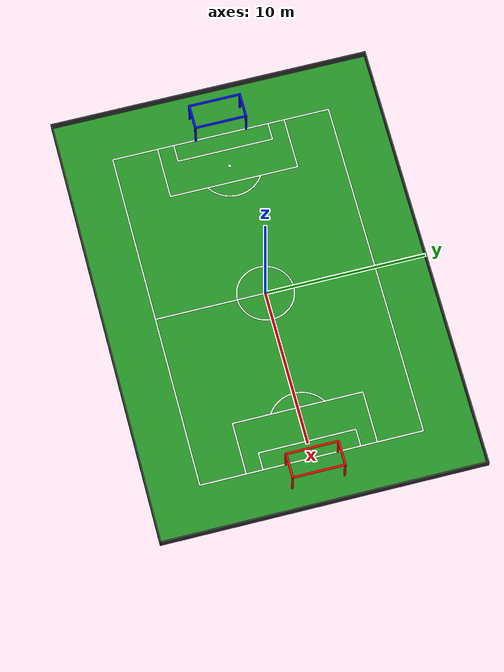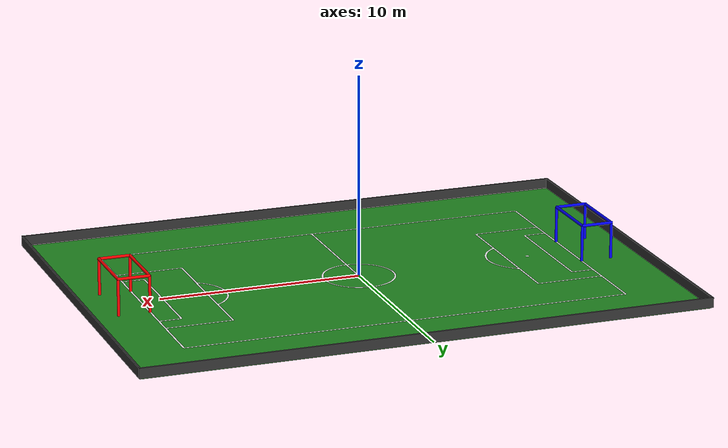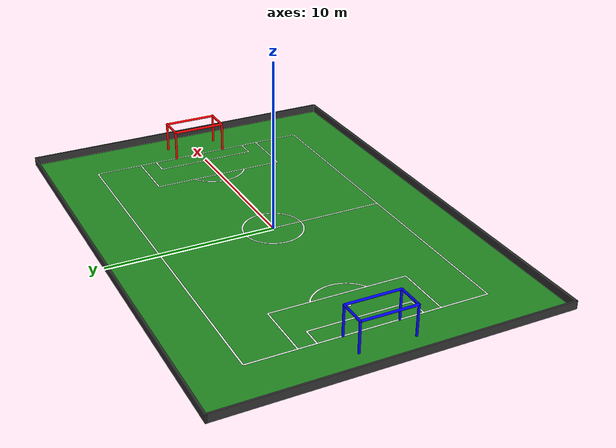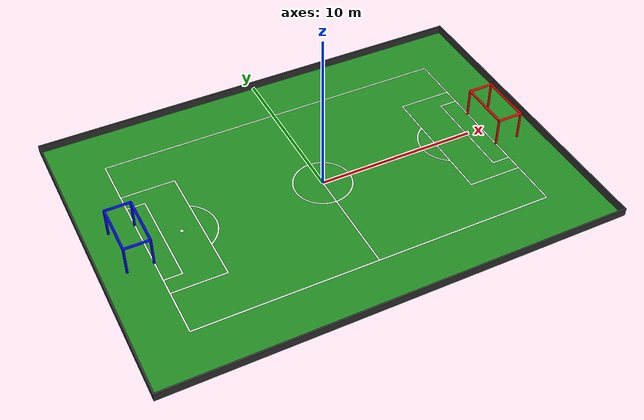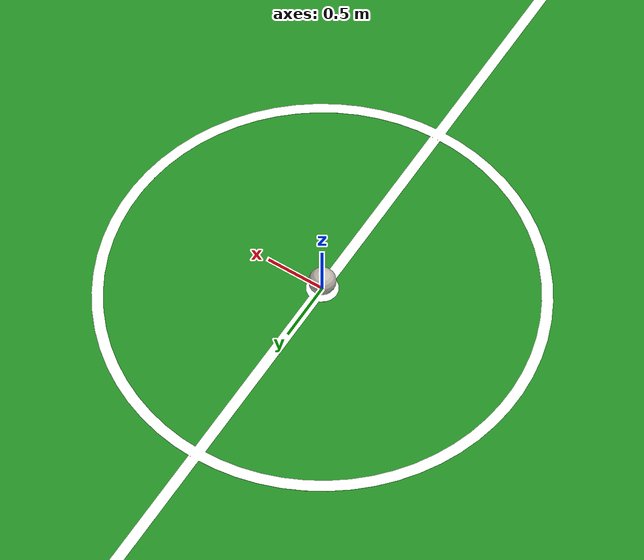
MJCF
<mujoco model="football">

    <asset>
        <!-- Overhead field texture and logo -->
        <mesh name="soccer_field" file="meshes/pitch_l.obj"/>
        <mesh name="goal_north" file="meshes/goal_north.obj"/>
        <mesh name="defender" file="meshes/defender.obj" scale="1.0 0.8 0.6"/>
        <mesh name="goalkeeper" file="meshes/goalkeeper.obj" scale="0.35 0.35 0.35"/>

        <texture name="logo_tex" type="2d" file="meshes/sai_logo.png" />
        <texture name="company_tex" type="2d" file="meshes/ArenaX_Black.png" />

        <material name="logo_mat"
            texture="logo_tex"
            rgba="1 1 1 1"/>

        <material name="company_mat"
            texture="company_tex"
            rgba="1 1 1 1"/>

        <texture name="soccer_tex" fileright="meshes/soccer/right.png"
                                            fileleft="meshes/soccer/left.png"
                                            fileup="meshes/soccer/up.png"
                                            filedown="meshes/soccer/down.png"
                                            filefront="meshes/soccer/front.png"
                                            fileback="meshes/soccer/back.png" />

        <material name="soccer_mat"
            texture="soccer_tex"
            rgba="1 1 1 1"/>

    <!-- Basic field material -->
        <material name="mat_grass" rgba="0.13 0.54 0.13 1"/>
        <material name="mat_board" rgba="0.2 0.2 0.2 1"/>

        <material name="mat_patch1" rgba="0.14 0.6 0.14 1"/>
        <material name="mat_patch2" rgba="0.11 0.47 0.11 1"/>

        <texture name="goalkeeper_tex" type="2d" file="meshes/goalkeeper.png"/>
        <material name="goalkeeper_mat"
            texture="goalkeeper_tex"
            rgba="1 1 1 1"
        />

    </asset>

    <worldbody>
    <!-- Base ground with field overlay -->

        <body name="football_field" pos="0 0 0">
            <geom contype="1" conaffinity="2" friction=".1 0.005 0.0001" name="field_base"
				size="14 10 0.01" type="plane" pos="0 0 0.007" material="mat_grass" condim="3"
				solimp="0 0.95 0.001 0.5 2" solref="0.02 1" margin="0" />
            <geom name="sai_logo1" type="plane" pos="0.00 8.4 0.01" size="1 1 1" material="logo_mat"/>
            <geom name="sai_logo2" type="plane" pos="0.00 -8.4 0.01" quat="0 0 0 1" size="1 1 1" material="logo_mat"/>

            <geom type="mesh" mesh="soccer_field" pos="0 0 0.009" rgba="1 1 1 1"/>

        </body>
        <body name="goal_post_north" pos="10.97 0 0">
            <site name="goal_post_north"/>
            <!-- Front Left Vertical Post -->
            <geom name="left_post_north" type="cylinder" size="0.07 0.9" pos="0 -1.6 0.9" euler="0 0 0"
                contype="1" conaffinity="1" rgba="1 0 0 1"/>

            <!-- Front Right Vertical Post -->
            <geom name="right_post_north" type="cylinder" size="0.07 0.9" pos="0 1.6 0.9" euler="0 0 0"
                contype="1" conaffinity="1" rgba="1 0 0 1"/>

            <!-- Back Left Vertical Post -->
            <geom name="back_left_post_north" type="cylinder" size="0.07 0.9" pos="1.53 -1.6 0.9" euler="0 0 0"
                contype="1" conaffinity="1" rgba="1 0 0 1"/>

            <!-- Back Right Vertical Post -->
            <geom name="back_right_post_north" type="cylinder" size="0.07 0.9" pos="1.53 1.6 0.9" euler="0 0 0"
                contype="1" conaffinity="1" rgba="1 0 0 1"/>

            <!-- Front Top Crossbar -->
            <geom name="crossbar_north" type="cylinder" size="0.07 1.6" pos="0 0 1.8" quat="0.707 0.707 0 0"
                contype="1" conaffinity="1" rgba="1 0 0 1"/>

            <!-- Back Base Bar -->
            <geom name="basebar_north" type="cylinder" size="0.07 1.6" pos="1.53 0 1.8" quat="0.707 0.707 0 0"
                contype="1" conaffinity="1" rgba="1 0 0 1"/>

            <!-- Left Sidebar -->
            <geom name="sidebar1_north" type="cylinder" size="0.07 0.8" pos="0.78 -1.6 1.8" quat="0.707 0 0.707 0"
                contype="1" conaffinity="1" rgba="1 0 0 1"/>

            <!-- Right Sidebar -->
            <geom name="sidebar2_north" type="cylinder" size="0.07 0.8" pos="0.78 1.6 1.8" quat="0.707 0 0.707 0"
                contype="1" conaffinity="1" rgba="1 0 0 1"/>
        </body>
        <body name="goal_post_south" pos="-10.97 0 0" quat="0 0 0 1">
            <site name="goal_post_south"/>
            <geom name="left_post_south" type="cylinder" size="0.07 0.9" pos="0 -1.6 0.9" euler="0 0 0"
                contype="1" conaffinity="1" rgba="0 0 1 1"/>

            <!-- Front Right Vertical Post -->
            <geom name="right_post_south" type="cylinder" size="0.07 0.9" pos="0 1.6 0.9" euler="0 0 0"
                contype="1" conaffinity="1" rgba="0 0 1 1"/>

            <!-- Back Left Vertical Post -->
            <geom name="back_left_post_south" type="cylinder" size="0.07 0.9" pos="1.53 -1.6 0.9" euler="0 0 0"
                contype="1" conaffinity="1" rgba="0 0 1 1"/>

            <!-- Back Right Vertical Post -->
            <geom name="back_right_post_south" type="cylinder" size="0.07 0.9" pos="1.53 1.6 0.9" euler="0 0 0"
                contype="1" conaffinity="1" rgba="0 0 1 1"/>

            <!-- Front Top Crossbar -->
            <geom name="crossbar_south" type="cylinder" size="0.07 1.6" pos="0 0 1.8" quat="0.707 0.707 0 0"
                contype="1" conaffinity="1" rgba="0 0 1 1"/>

            <!-- Back Base Bar -->
            <geom name="basebar_south" type="cylinder" size="0.07 1.6" pos="1.53 0 1.8" quat="0.707 0.707 0 0"
                contype="1" conaffinity="1" rgba="0 0 1 1"/>

            <!-- Left Sidebar -->
            <geom name="sidebar1_south" type="cylinder" size="0.07 0.8" pos="0.78 -1.6 1.8" quat="0.707 0 0.707 0"
                contype="1" conaffinity="1" rgba="0 0 1 1"/>

            <!-- Right Sidebar -->
            <geom name="sidebar2_south" type="cylinder" size="0.07 0.8" pos="0.78 1.6 1.8" quat="0.707 0 0.707 0"
                contype="1" conaffinity="1" rgba="0 0 1 1"/>
        </body>

    <!-- Perimeter boards -->
        <body name="boards" pos="0 0 0.01">
            <geom name="board_north" type="box" size="14.05 0.05 0.25" pos="0 10 0.25" material="mat_board"/>
            <geom name="board_south" type="box" size="14.05 0.05 0.25" pos="0 -10 0.25" material="mat_board"/>
            <geom name="board_east" type="box" size="0.05 10 0.25" pos="14 0 0.25" material="mat_board"/>
            <geom name="board_west" type="box" size="0.05 10 0.25" pos="-14 0 0.25" material="mat_board"/>
        </body>

        <body name="soccer_ball" pos="0 0 0.0">
            <joint name="env:ball" type="free"></joint>
            <geom name="ball" type="sphere" size="0.11" pos="0 0 0.11" material="soccer_mat" density="81"/>
            <site name="ball"/>
        </body>

    </worldbody>
</mujoco>
